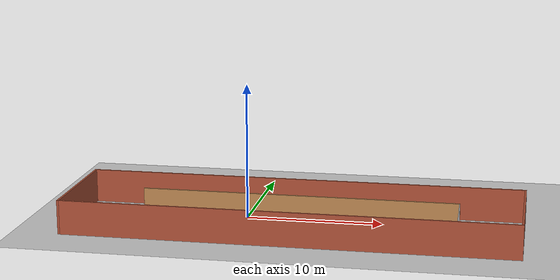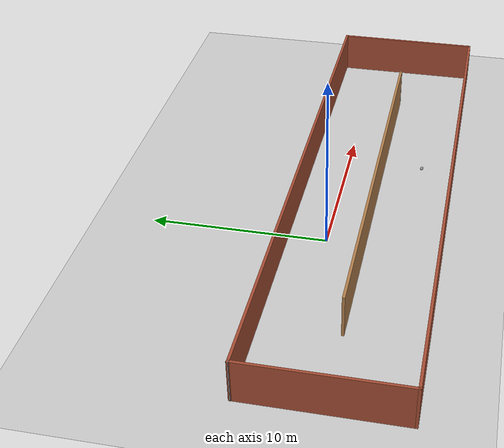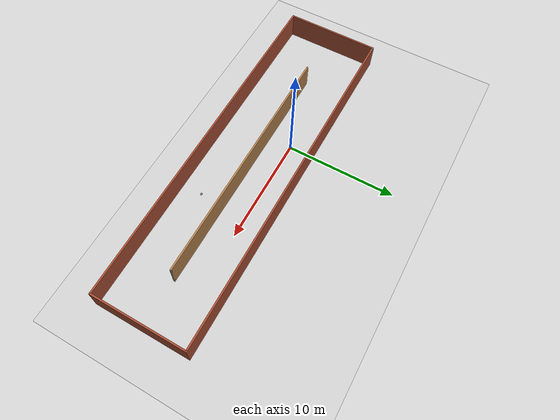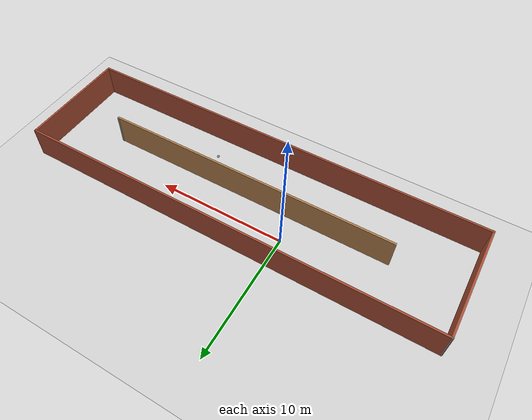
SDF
<sdf version="1.6">
 <world name="default">
  <model name="mybuilding">
   <pose>3.88334 -2.07308 0 0 -0 0</pose>
   <link name="Wall_13">
    <collision name="Wall_13_Collision">
     <geometry><box><size>32.75 0.15 2.5</size></box></geometry>
     <pose>0 0 1.25 0 -0 0</pose>
    </collision>
    <visual name="Wall_13_Visual">
     <pose>0 0 1.25 0 -0 0</pose>
     <geometry><box><size>32.75 0.15 2.5</size></box></geometry>
     <material>
      <script><uri>file://media/materials/scripts/gazebo.material</uri><name>Gazebo/Bricks</name></script>
      <ambient>0.435294 0.796078 0.67451 1</ambient>
     </material>
     <meta><layer>0</layer></meta>
    </visual>
    <pose>0.013664 4.28634 0 0 -0 0</pose>
   </link>
   <link name="Wall_14">
    <collision name="Wall_14_Collision">
     <geometry><box><size>8.75 0.15 2.5</size></box></geometry>
     <pose>0 0 1.25 0 -0 0</pose>
    </collision>
    <visual name="Wall_14_Visual">
     <pose>0 0 1.25 0 -0 0</pose>
     <geometry><box><size>8.75 0.15 2.5</size></box></geometry>
     <material>
      <script><uri>file://media/materials/scripts/gazebo.material</uri><name>Gazebo/Bricks</name></script>
      <ambient>1 1 1 1</ambient>
     </material>
     <meta><layer>0</layer></meta>
    </visual>
    <pose>16.3137 -0.013664 0 0 0 -1.5708</pose>
   </link>
   <link name="Wall_15">
    <collision name="Wall_15_Collision">
     <geometry><box><size>32.75 0.15 2.5</size></box></geometry>
     <pose>0 0 1.25 0 -0 0</pose>
    </collision>
    <visual name="Wall_15_Visual">
     <pose>0 0 1.25 0 -0 0</pose>
     <geometry><box><size>32.75 0.15 2.5</size></box></geometry>
     <material>
      <script><uri>file://media/materials/scripts/gazebo.material</uri><name>Gazebo/Bricks</name></script>
      <ambient>0.435294 0.796078 0.67451 1</ambient>
     </material>
     <meta><layer>0</layer></meta>
    </visual>
    <pose>0.013664 -4.31366 0 0 -0 3.14159</pose>
   </link>
   <link name="Wall_16">
    <collision name="Wall_16_Collision">
     <geometry><box><size>8.75 0.15 2.5</size></box></geometry>
     <pose>0 0 1.25 0 -0 0</pose>
    </collision>
    <visual name="Wall_16_Visual">
     <pose>0 0 1.25 0 -0 0</pose>
     <geometry><box><size>8.75 0.15 2.5</size></box></geometry>
     <material>
      <script><uri>file://media/materials/scripts/gazebo.material</uri><name>Gazebo/Bricks</name></script>
      <ambient>0.435294 0.796078 0.67451 1</ambient>
     </material>
     <meta><layer>0</layer></meta>
    </visual>
    <pose>-16.2863 -0.013664 0 0 -0 1.5708</pose>
   </link>
   <link name="Wall_17">
    <collision name="Wall_17_Collision">
     <geometry><box><size>0.15 0.15 2.5</size></box></geometry>
     <pose>0 0 1.25 0 -0 0</pose>
    </collision>
    <visual name="Wall_17_Visual">
     <pose>0 0 1.25 0 -0 0</pose>
     <geometry><box><size>0.15 0.15 2.5</size></box></geometry>
     <material>
      <script><uri>file://media/materials/scripts/gazebo.material</uri><name>Gazebo/Grey</name></script>
      <ambient>1 1 1 1</ambient>
     </material>
     <meta><layer>0</layer></meta>
    </visual>
    <pose>-16.2863 4.28634 0 0 -0 1.05165</pose>
   </link>
   <link name="Wall_19">
    <collision name="Wall_19_Collision">
     <geometry><box><size>23 0.15 2.5</size></box></geometry>
     <pose>0 0 1.25 0 -0 0</pose>
    </collision>
    <visual name="Wall_19_Visual">
     <pose>0 0 1.25 0 -0 0</pose>
     <geometry><box><size>23 0.15 2.5</size></box></geometry>
     <material>
      <script><uri>file://media/materials/scripts/gazebo.material</uri><name>Gazebo/Wood</name></script>
      <ambient>0.760784 0.662745 0.627451 1</ambient>
     </material>
     <meta><layer>0</layer></meta>
    </visual>
    <pose>0.343051 -0.085349 0 0 -0 0</pose>
   </link>
   <link name="Wall_20">
    <collision name="Wall_20_Collision">
     <geometry><box><size>0.15 0.15 2.5</size></box></geometry>
     <pose>0 0 1.25 0 -0 0</pose>
    </collision>
    <visual name="Wall_20_Visual">
     <pose>0 0 1.25 0 -0 0</pose>
     <geometry><box><size>0.15 0.15 2.5</size></box></geometry>
     <material>
      <script><uri>file://media/materials/scripts/gazebo.material</uri><name>Gazebo/Grey</name></script>
      <ambient>1 1 1 1</ambient>
     </material>
     <meta><layer>0</layer></meta>
    </visual>
    <pose>11.7681 -0.085349 0 0 -0 0</pose>
   </link>
   <static>1</static>
  </model>
  <model name="ground_plane">
   <static>1</static>
   <link name="link">
    <collision name="collision">
     <geometry><plane><normal>0 0 1</normal><size>100 100</size></plane></geometry>
     <surface>
      <contact><collide_bitmask>65535</collide_bitmask></contact>
      <friction><ode><mu>100</mu><mu2>50</mu2></ode></friction>
     </surface>
    </collision>
    <visual name="visual">
     <cast_shadows>0</cast_shadows>
     <geometry><plane><normal>0 0 1</normal><size>100 100</size></plane></geometry>
     <material>
      <script><uri>file://media/materials/scripts/gazebo.material</uri><name>Gazebo/Grey</name></script>
     </material>
    </visual>
   </link>
  </model>
  <model name="my_ball">
   <link name="link_0">
    <inertial>
     <mass>1</mass>
     <inertia><ixx>0.1</ixx><ixy>0</ixy><ixz>0</ixz><iyy>0.1</iyy><iyz>0</iyz><izz>0.1</izz></inertia>
    </inertial>
    <visual name="visual">
     <geometry><sphere><radius>0.1</radius></sphere></geometry>
     <material>
      <lighting>1</lighting>
      <script><uri>file://media/materials/scripts/gazebo.material</uri><name>Gazebo/Grey</name></script>
      <ambient>1 1 1 1</ambient>
      <diffuse>1 1 1 1</diffuse>
      <specular>1 1 1 1</specular>
      <emissive>1 1 1 1</emissive>
      <shader type="vertex"><normal_map>__default__</normal_map></shader>
     </material>
    </visual>
    <collision name="collision">
     <geometry><sphere><radius>0.1</radius></sphere></geometry>
     <surface>
      <friction>
       <ode><mu>1</mu><mu2>1</mu2><fdir1>0 0 0</fdir1><slip1>0</slip1><slip2>0</slip2></ode>
       <torsional>
        <coefficient>1</coefficient>
        <patch_radius>0</patch_radius>
        <surface_radius>0</surface_radius>
        <use_patch_radius>1</use_patch_radius>
        <ode><slip>0</slip></ode>
       </torsional>
      </friction>
      <bounce><restitution_coefficient>0</restitution_coefficient><threshold>1e+06</threshold></bounce>
      <contact>
       <collide_without_contact>0</collide_without_contact>
       <collide_without_contact_bitmask>1</collide_without_contact_bitmask>
       <collide_bitmask>1</collide_bitmask>
       <ode>
        <soft_cfm>0</soft_cfm>
        <soft_erp>0.2</soft_erp>
        <kp>1e+13</kp>
        <kd>1</kd>
        <max_vel>0.01</max_vel>
        <min_depth>0</min_depth>
       </ode>
       <bullet>
        <split_impulse>1</split_impulse>
        <split_impulse_penetration_threshold>-0.01</split_impulse_penetration_threshold>
        <soft_cfm>0</soft_cfm>
        <soft_erp>0.2</soft_erp>
        <kp>1e+13</kp>
        <kd>1</kd>
       </bullet>
      </contact>
     </surface>
    </collision>
   </link>
   <static>0</static>
   <pose>8.04265 -4.48298 0.1 0 -0 0</pose>
  </model>
 </world>
</sdf>
